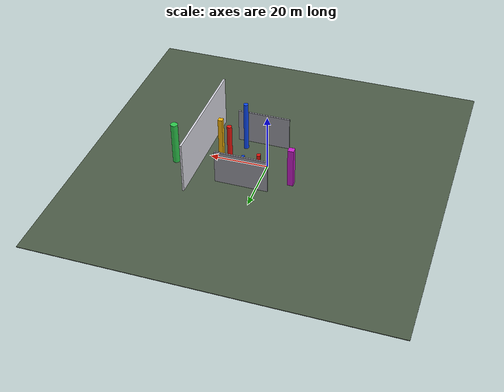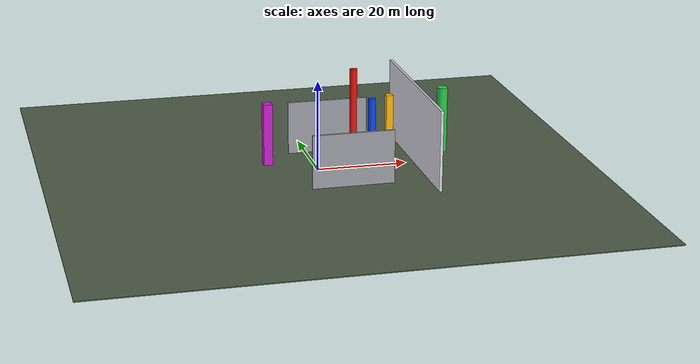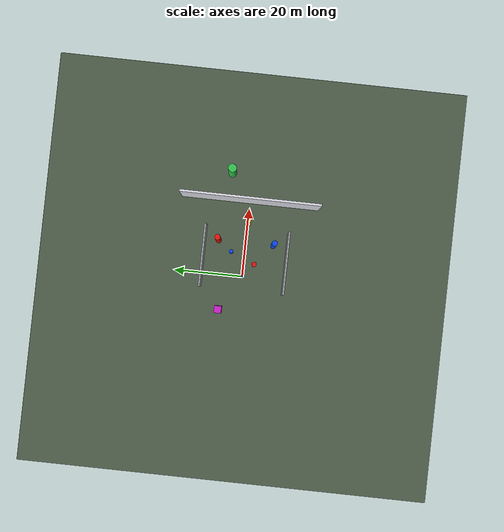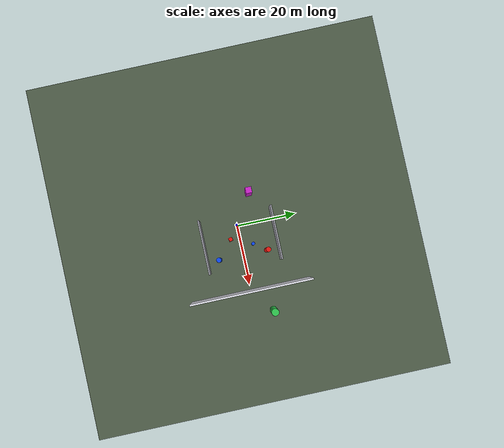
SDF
<sdf version="1.9">
 <world name="iris_avoidance_20m">
  <physics name="1ms" type="ignore">
   <max_step_size>0.001</max_step_size>
   <real_time_factor>1.0</real_time_factor>
  </physics>
  <plugin filename="gz-sim-physics-system" name="gz::sim::systems::Physics"/>
  <plugin filename="gz-sim-sensors-system" name="gz::sim::systems::Sensors">
   <render_engine>ogre2</render_engine>
  </plugin>
  <plugin filename="gz-sim-user-commands-system" name="gz::sim::systems::UserCommands"/>
  <plugin filename="gz-sim-scene-broadcaster-system" name="gz::sim::systems::SceneBroadcaster"/>
  <plugin filename="gz-sim-imu-system" name="gz::sim::systems::Imu"/>
  <plugin filename="gz-sim-magnetometer-system" name="gz::sim::systems::Magnetometer"/>
  <plugin filename="gz-sim-air-pressure-system" name="gz::sim::systems::AirPressure"/>
  <plugin filename="gz-sim-navsat-system" name="gz::sim::systems::NavSat"/>
  <spherical_coordinates>
   <surface_model>EARTH_WGS84</surface_model>
   <latitude_deg>-35.363262</latitude_deg>
   <longitude_deg>149.165237</longitude_deg>
   <elevation>584</elevation>
   <heading_deg>0</heading_deg>
  </spherical_coordinates>
  <magnetic_field>2.1e-5 5.0e-6 -4.2e-5</magnetic_field>
  <scene><ambient>0.60 0.60 0.60</ambient><background>0.72 0.82 0.92</background><shadows>true</shadows></scene>
  <light type="directional" name="sun">
   <pose>0 0 15 0 0 0</pose>
   <diffuse>0.9 0.9 0.85 1</diffuse>
   <specular>0.2 0.2 0.2 1</specular>
   <direction>-0.4 0.2 -0.9</direction>
  </light>
  <model name="ground">
   <static>true</static>
   <link name="link">
    <collision name="collision"><geometry><box><size>120 120 0.2</size></box></geometry></collision>
    <visual name="visual">
     <geometry><box><size>120 120 0.2</size></box></geometry>
     <material><ambient>0.22 0.26 0.20 1</ambient><diffuse>0.30 0.36 0.28 1</diffuse></material>
    </visual>
   </link>
  </model>
  <model name="north_wall">
   <static>true</static>
   <pose>22 0 9 0 0 0</pose>
   <link name="link">
    <collision name="collision"><geometry><box><size>0.6 40 18</size></box></geometry></collision>
    <visual name="visual">
     <geometry><box><size>0.6 40 18</size></box></geometry>
     <material><ambient>0.78 0.78 0.82 1</ambient><diffuse>0.88 0.88 0.92 1</diffuse></material>
    </visual>
   </link>
  </model>
  <model name="pillar_north">
   <static>true</static>
   <pose>10 8 10 0 0 0</pose>
   <link name="link">
    <collision name="collision">
     <geometry><cylinder><radius>0.8</radius><length>20</length></cylinder></geometry>
    </collision>
    <visual name="visual">
     <geometry><cylinder><radius>0.8</radius><length>20</length></cylinder></geometry>
     <material><ambient>0.65 0.05 0.04 1</ambient><diffuse>0.9 0.08 0.05 1</diffuse></material>
    </visual>
   </link>
  </model>
  <model name="pillar_south">
   <static>true</static>
   <pose>10 -8 9 0 0 0</pose>
   <link name="link">
    <collision name="collision">
     <geometry><cylinder><radius>0.8</radius><length>18</length></cylinder></geometry>
    </collision>
    <visual name="visual">
     <geometry><cylinder><radius>0.8</radius><length>18</length></cylinder></geometry>
     <material><ambient>0.03 0.18 0.65 1</ambient><diffuse>0.04 0.28 0.95 1</diffuse></material>
    </visual>
   </link>
  </model>
  <model name="pillar_mid">
   <static>true</static>
   <pose>16 0 8 0 0 0</pose>
   <link name="link">
    <collision name="collision"><geometry><box><size>1.5 1.5 16</size></box></geometry></collision>
    <visual name="visual">
     <geometry><box><size>1.5 1.5 16</size></box></geometry>
     <material><ambient>0.72 0.50 0.02 1</ambient><diffuse>1 0.72 0.04 1</diffuse></material>
    </visual>
   </link>
  </model>
  <model name="tower_east">
   <static>true</static>
   <pose>30 6 7.5 0 0 0</pose>
   <link name="link">
    <collision name="collision">
     <geometry><cylinder><radius>1.2</radius><length>15</length></cylinder></geometry>
    </collision>
    <visual name="visual">
     <geometry><cylinder><radius>1.2</radius><length>15</length></cylinder></geometry>
     <material><ambient>0.12 0.55 0.22 1</ambient><diffuse>0.18 0.78 0.30 1</diffuse></material>
    </visual>
   </link>
  </model>
  <model name="tower_west">
   <static>true</static>
   <pose>-10 6 7 0 0 0</pose>
   <link name="link">
    <collision name="collision"><geometry><box><size>2 2 14</size></box></geometry></collision>
    <visual name="visual">
     <geometry><box><size>2 2 14</size></box></geometry>
     <material><ambient>0.55 0.08 0.55 1</ambient><diffuse>0.8 0.12 0.8 1</diffuse></material>
    </visual>
   </link>
  </model>
  <model name="corridor_wall_left">
   <static>true</static>
   <pose>5 12 6 0 0 0</pose>
   <link name="link">
    <collision name="collision"><geometry><box><size>18 0.5 12</size></box></geometry></collision>
    <visual name="visual">
     <geometry><box><size>18 0.5 12</size></box></geometry>
     <material><ambient>0.50 0.50 0.52 1</ambient><diffuse>0.62 0.62 0.66 1</diffuse></material>
    </visual>
   </link>
  </model>
  <model name="corridor_wall_right">
   <static>true</static>
   <pose>5 -12 6 0 0 0</pose>
   <link name="link">
    <collision name="collision"><geometry><box><size>18 0.5 12</size></box></geometry></collision>
    <visual name="visual">
     <geometry><box><size>18 0.5 12</size></box></geometry>
     <material><ambient>0.50 0.50 0.52 1</ambient><diffuse>0.62 0.62 0.66 1</diffuse></material>
    </visual>
   </link>
  </model>
  <model name="red_box_low">
   <static>true</static>
   <pose>4 -3 1 0 0 0.25</pose>
   <link name="link">
    <collision name="collision"><geometry><box><size>1.2 1.2 2</size></box></geometry></collision>
    <visual name="visual">
     <geometry><box><size>1.2 1.2 2</size></box></geometry>
     <material><ambient>0.65 0.05 0.04 1</ambient><diffuse>0.9 0.08 0.05 1</diffuse></material>
    </visual>
   </link>
  </model>
  <model name="blue_tower_low">
   <static>true</static>
   <pose>7 4 3 0 0 0</pose>
   <link name="link">
    <collision name="collision">
     <geometry><cylinder><radius>0.55</radius><length>6</length></cylinder></geometry>
    </collision>
    <visual name="visual">
     <geometry><cylinder><radius>0.55</radius><length>6</length></cylinder></geometry>
     <material><ambient>0.03 0.18 0.65 1</ambient><diffuse>0.04 0.28 0.95 1</diffuse></material>
    </visual>
   </link>
  </model>
 </world>
</sdf>
